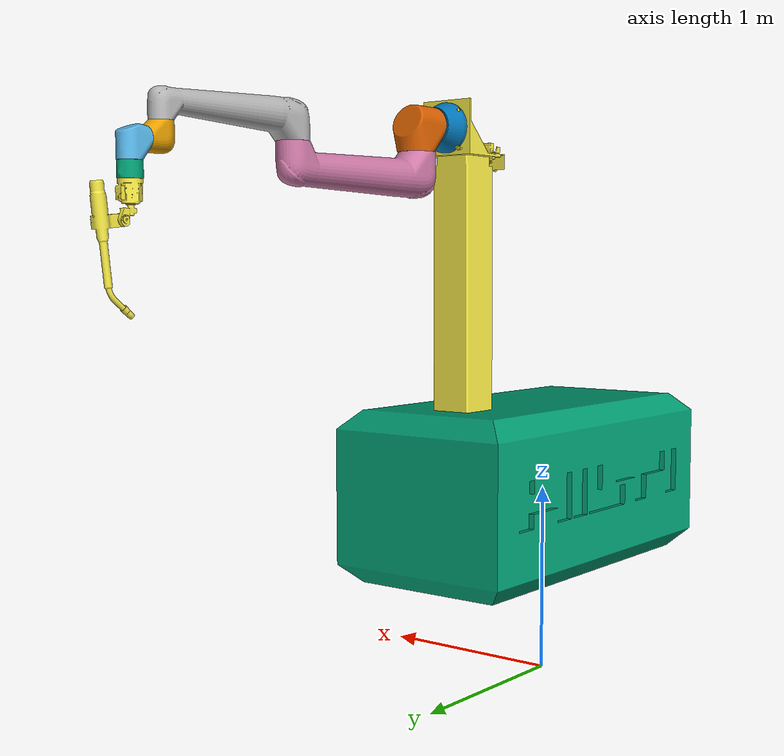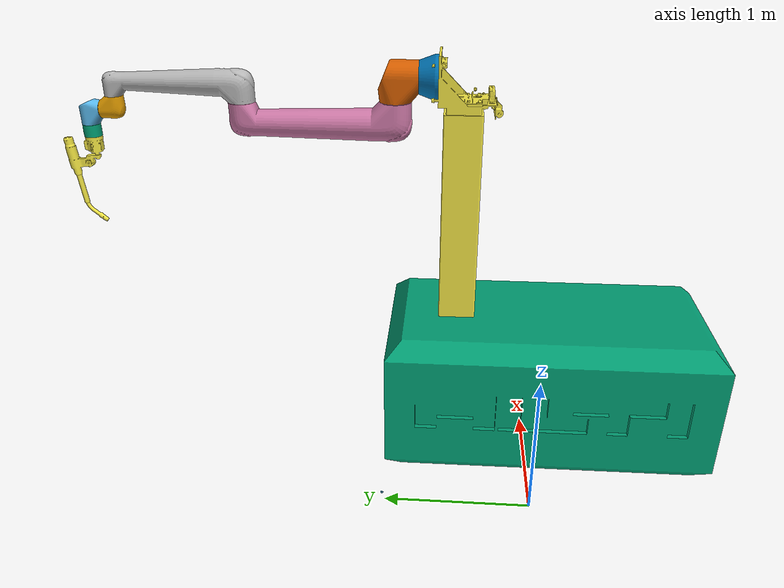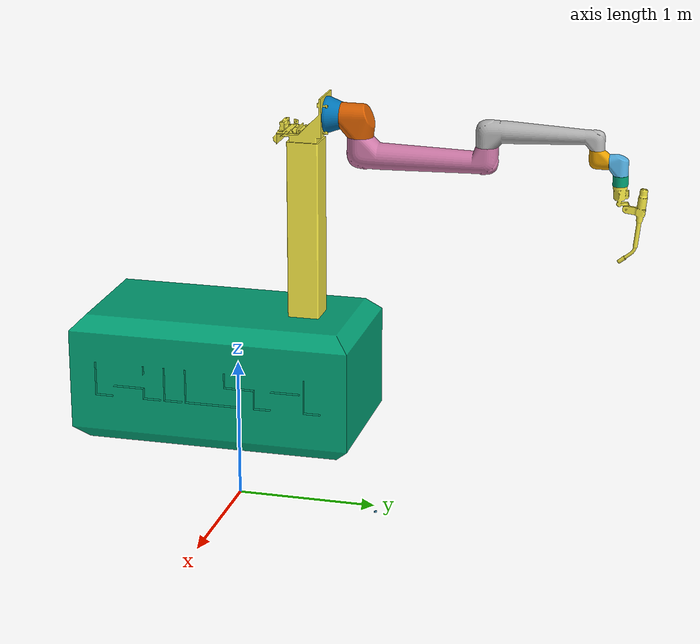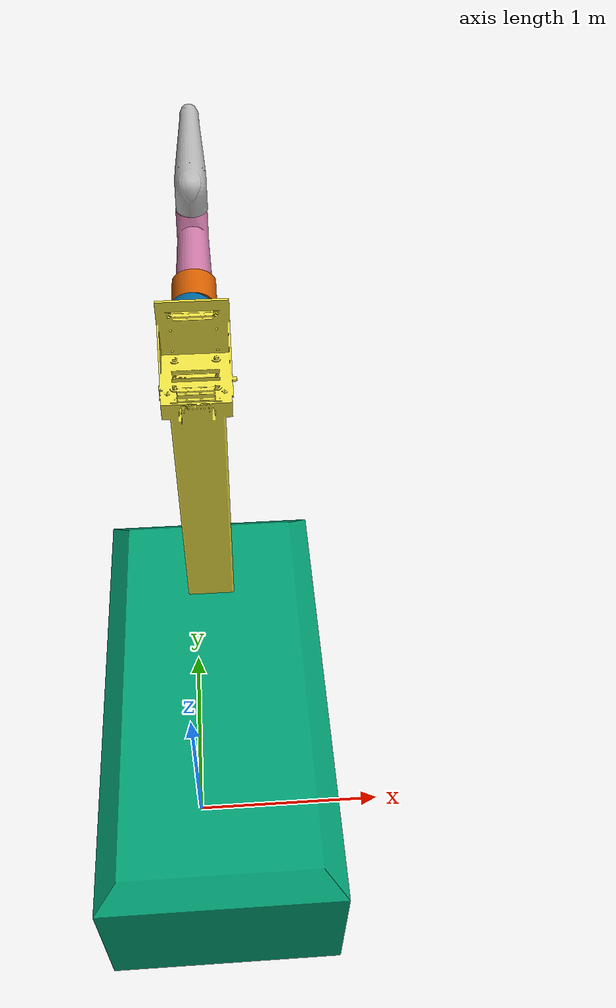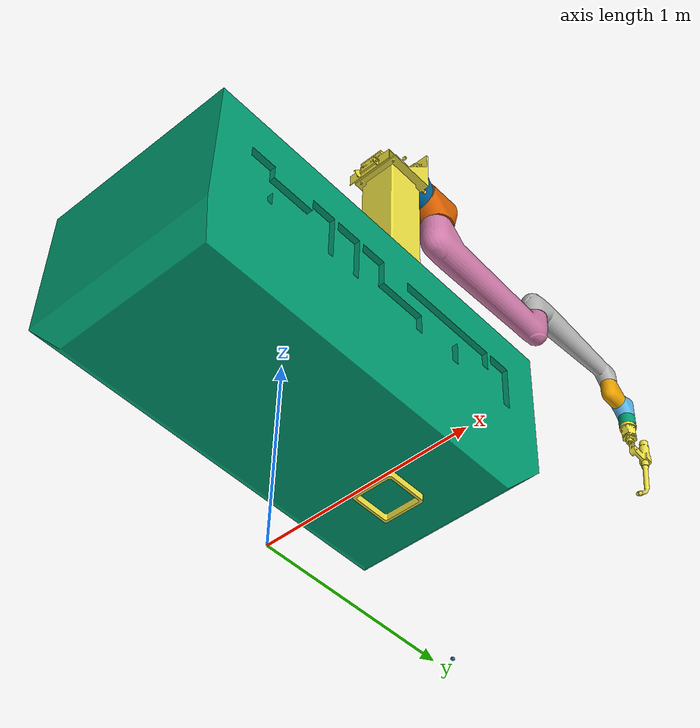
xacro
<?xml version="1.0"?>
<robot xmlns:xacro="http://www.ros.org/wiki/xacro" name="welder">
    <xacro:arg name="initial_positions_file" default="initial_positions.yaml" />

    <!-- Import welder urdf file -->
    <xacro:include filename="$(find welding_kinematic_controller)/urdf/welder.urdf.xacro" />

    <!-- Import control_xacro -->
    <xacro:include filename="welder.ros2_control.xacro" />

    <xacro:welder_ros2_control name="FakeSystem" initial_positions_file="$(arg initial_positions_file)"/>

</robot>

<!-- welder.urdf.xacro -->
<robot xmlns:xacro="http://www.ros.org/wiki/xacro" name="welder">
    <!-- Root link -->
    <link name="welder_base_link"/>
<!-- LINKS -->
    <!-- Caterpillar -->
    <link name="w_caterpillar">
        <visual>
            <geometry>
                <mesh filename="package://welding_kinematic_controller/urdf/meshes/welder/caterpillar.stl" scale="0.01 0.01 0.01"/>
            </geometry>
            <origin xyz="0 0 0"/>
        </visual>
        <collision>
            <geometry>
                <mesh filename="package://welding_kinematic_controller/urdf/meshes/welder/caterpillar.stl" scale="0.01 0.01 0.01"/>
            </geometry>
            <origin xyz="0 0 0"/>
        </collision>
    </link>
    <!-- Body -->
    <link name="w_body">
        <visual>
            <geometry>
                <mesh filename="package://welding_kinematic_controller/urdf/meshes/welder/cat_body.stl" scale="0.01 0.01 0.01"/>
            </geometry>
            <origin xyz="0 0 0"/>
        </visual>
        <collision>
            <geometry>
                <mesh filename="package://welding_kinematic_controller/urdf/meshes/welder/cat_body.stl" scale="0.01 0.01 0.01"/>
            </geometry>
            <origin xyz="0 0 0"/>
        </collision>
        <inertial>
            <mass value="1.0"/>
            <origin xyz="0 0 0"/>
            <inertia ixx="0" ixy="0" ixz="0" iyy="1" iyz="0" izz="0"/>
        </inertial>
    </link>
    <!-- Telescopic Joint -->
    <link name="w_telescopic_joint">
        <visual>
            <geometry>
                <mesh filename="package://welding_kinematic_controller/urdf/meshes/welder/telescopic_joint.stl" scale="0.01 0.01 0.01"/>
            </geometry>
            <origin xyz="0 0 0"/>
        </visual>
        <collision>
            <geometry>
                <mesh filename="package://welding_kinematic_controller/urdf/meshes/welder/telescopic_joint.stl" scale="0.01 0.01 0.01"/>
            </geometry>
            <origin xyz="0 0 0"/>
        </collision>
    </link>
    <!-- Manipulator Base -->
    <link name="w_manip_base">
        <visual>
            <geometry>
                <mesh filename="package://welding_kinematic_controller/urdf/meshes/welder/manip_base.stl" scale="0.01 0.01 0.01"/>
            </geometry>
            <origin xyz="0 0 0"/>
        </visual>
        <collision>
            <geometry>
                <mesh filename="package://welding_kinematic_controller/urdf/meshes/welder/manip_base.stl" scale="0.01 0.01 0.01"/>
            </geometry>
            <origin xyz="0 0 0"/>
        </collision>
    </link>
    <!-- Link1 -->
    <link name="w_link1">
        <visual>
            <geometry>
                <mesh filename="package://welding_kinematic_controller/urdf/meshes/welder/link1.stl" scale="0.01 0.01 0.01"/>
            </geometry>
            <origin xyz="-0.04 0.18 -2.88"/>
        </visual>
        <collision>
            <geometry>
                <mesh filename="package://welding_kinematic_controller/urdf/meshes/welder/link1.stl" scale="0.01 0.01 0.01"/>
            </geometry>
            <origin xyz="-0.04 0.18 -2.88"/>
        </collision>

    </link>
    <!-- Link2 -->
    <link name="w_link2">
        <visual>
            <geometry>
                <mesh filename="package://welding_kinematic_controller/urdf/meshes/welder/link2.stl" scale="0.01 0.01 0.01"/>
            </geometry>
            <origin xyz="-0.05 0.06 -2.75"/>
        </visual>
        <collision>
            <geometry>
                <mesh filename="package://welding_kinematic_controller/urdf/meshes/welder/link2.stl" scale="0.01 0.01 0.01"/>
            </geometry>
            <origin xyz="-0.05 0.06 -2.75"/>
        </collision>
        <inertial>
        <!-- Mass -->
        <mass value="1.6343"/>
        <!-- Center of Mass -->
        <origin xyz="-0.05 -0.241 2.638"/>
        <!-- Inertia Tensor -->
        <inertia
            ixx="0.70" ixy="0.0" ixz="0.0"
            iyy="0.90" iyz="0.0"
            izz="1.0"/>
        </inertial>
    </link>
    <!-- Link3 -->
    <link name="w_link3">
        <visual>
            <geometry>
                <mesh filename="package://welding_kinematic_controller/urdf/meshes/welder/link3.stl" scale="0.01 0.01 0.01"/>
            </geometry>
            <origin xyz="-0.05 -0.8 -2.75"/>
        </visual>
        <collision>
            <geometry>
                <mesh filename="package://welding_kinematic_controller/urdf/meshes/welder/link3.stl" scale="0.01 0.01 0.01"/>
            </geometry>
            <origin xyz="-0.05 -0.8 -2.75"/>
        </collision>
    </link>
    <!-- Link4 -->
    <link name="w_link4">
        <visual>
            <geometry>
                <mesh filename="package://welding_kinematic_controller/urdf/meshes/welder/link4.stl" scale="0.01 0.01 0.01"/>
            </geometry>
            <origin xyz="-0.05 -1.528 -2.75"/>
        </visual>
        <collision>
            <geometry>
                <mesh filename="package://welding_kinematic_controller/urdf/meshes/welder/link4.stl" scale="0.01 0.01 0.01"/>
            </geometry>
            <origin xyz="-0.05 -1.528 -2.75"/>
        </collision>
    </link>
    <!-- Link5 -->
    <link name="w_link5">
        <visual>
            <geometry>
                <mesh filename="package://welding_kinematic_controller/urdf/meshes/welder/link5.stl" scale="0.01 0.01 0.01"/>
            </geometry>
            <origin xyz="-0.05 -1.613 -2.6727"/>
        </visual>
        <collision>
            <geometry>
                <mesh filename="package://welding_kinematic_controller/urdf/meshes/welder/link5.stl" scale="0.01 0.01 0.01"/>
            </geometry>
            <origin xyz="-0.05 -1.613 -2.6727"/>
        </collision>
    </link>
    <!-- Link6 -->
    <link name="w_link6">
        <visual>
            <geometry>
                <mesh filename="package://welding_kinematic_controller/urdf/meshes/welder/link6.stl" scale="0.01 0.01 0.01"/>
            </geometry>
            <origin xyz="-0.05 -1.687 -2.5877"/>
        </visual>
        <collision>
            <geometry>
                <mesh filename="package://welding_kinematic_controller/urdf/meshes/welder/link6.stl" scale="0.01 0.01 0.01"/>
            </geometry>
            <origin xyz="-0.05 -1.687 -2.5877"/>
        </collision>
    </link>
    <!-- End Effector -->
    <link name="welding_tool">
        <visual>
            <geometry>
                <mesh filename="package://welding_kinematic_controller/urdf/meshes/welder/welding_torch.stl" scale="0.01 0.01 0.01"/>
            </geometry>
            <origin xyz="-0.4 -1.687 -2.5877"/>
        </visual>
        <collision>
            <geometry>
                <mesh filename="package://welding_kinematic_controller/urdf/meshes/welder/welding_torch.stl" scale="0.01 0.01 0.01"/>
            </geometry>
            <origin xyz="-0.4 -1.687 -2.5877"/>
        </collision>
    </link>
<!-- END OF LINKS -->
<!-- JOINTS -->
    <!-- Base to Caterpillar -->
    <joint name="base_to_w_caterpillar" type="fixed">
        <parent link="welder_base_link"/>
        <child link="w_caterpillar"/>
        <origin xyz="0.07935 0.98633 -0.00864" rpy="0 0 0"/>
    </joint>
    <!-- Caterpillar to Body -->
    <joint name="body_rotation" type="fixed">
        <parent link="w_caterpillar"/>
        <child link="w_body"/>
        <origin xyz="0 0 0" rpy="0 0 0"/>
    </joint>
    <!-- Body to Telescopic Joint -->
    <joint name="body_to_telescopic_joint" type="fixed">
        <parent link="w_body"/>
        <child link="w_telescopic_joint"/>
        <origin xyz="0 0 0" rpy="0 0 0"/>
        <axis xyz="0 0 1"/>
        <limit lower="-1.0" upper="1.0" effort="10" velocity="5.0"/>
    </joint>
    <!-- Telescopic to Manipulator Base -->
    <joint name="telescopic_joint_to_manip_base" type="fixed">
        <parent link="w_telescopic_joint"/>
        <child link="w_manip_base"/>
        <origin xyz="0 0 0" rpy="0 0 0"/>
    </joint>
    <!-- Manipulator Base to Link1 -->
    <joint name="manip_base_to_link1" type="revolute">
        <parent link="w_manip_base"/>
        <child link="w_link1"/>
        <origin xyz="0.05 -0.18 2.88" rpy="0 0 0"/>
        <axis xyz="0 1 0"/>
        <limit lower="-3.13159" upper="3.14159" effort="10" velocity="10.0"/>
    </joint>
    <!-- Link1 to Link2 -->
    <joint name="link1_to_link2" type="revolute">
        <parent link="w_link1"/>
        <child link="w_link2"/>
        <origin xyz="0 0.12 -0.13" rpy="0 0 0"/>
        <axis xyz="0 0 1"/>
        <limit lower="-3.13159" upper="3.14159" effort="100" velocity="100.0"/>
    </joint>
    <!-- Link2 to Link3 -->
    <joint name="link2_to_link3" type="revolute">
        <parent link="w_link2"/>
        <child link="w_link3"/>
        <origin xyz="0 0.86 0" rpy="0 0 0"/>
        <axis xyz="0 0 1"/>
        <limit lower="-3.13159" upper="3.14159" effort="100" velocity="100.0"/>
    </joint>
    <!-- Link3 to Link4 -->
    <joint name="link3_to_link4" type="revolute">
        <parent link="w_link3"/>
        <child link="w_link4"/>
        <origin xyz="0 0.728 0" rpy="0 0 0"/>
        <axis xyz="0 0 1"/>
        <limit lower="-3.13159" upper="3.14159" effort="100" velocity="100.0"/>
    </joint>
    <!-- Link4 to Link5 -->
    <joint name="link4_to_link5" type="revolute">
        <parent link="w_link4"/>
        <child link="w_link5"/>
        <origin xyz="0 0.085 -0.0773" rpy="0 0 0"/>
        <axis xyz="0 1 0"/>
        <limit lower="-3.13159" upper="3.14159" effort="100" velocity="100.0"/>
    </joint>
    <!-- Link5 to Link6 -->
    <joint name="link5_to_link6" type="revolute">
        <parent link="w_link5"/>
        <child link="w_link6"/>
        <origin xyz="0 0.074 -0.0853" rpy="0 0 0"/>
        <axis xyz="0 0 1"/>
        <limit lower="-3.13159" upper="3.14159" effort="100" velocity="100.0"/>
    </joint>
    <!-- Link6 to Welding Tool -->
    <joint name="link6_to_welding_tool" type="fixed">
        <parent link="w_link6"/>
        <child link="welding_tool"/>
        <origin xyz="0 0 0" rpy="0 0 0"/>
    </joint>
<!-- END OF JOINTS -->
</robot>
